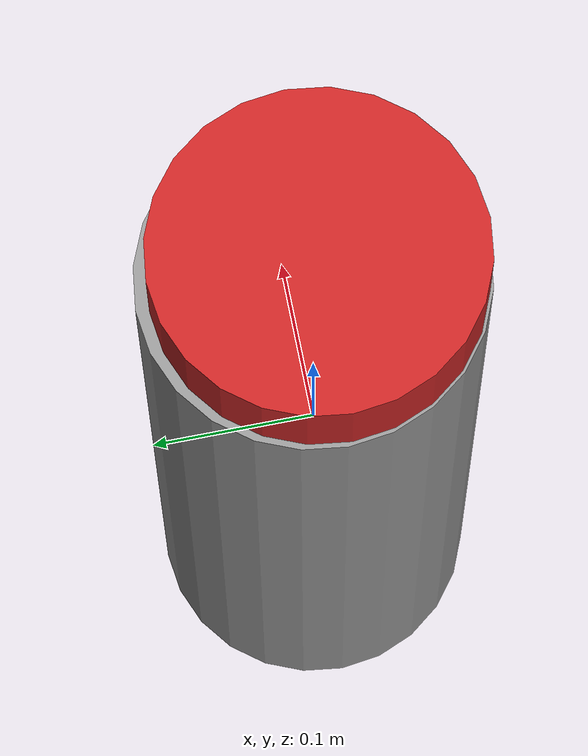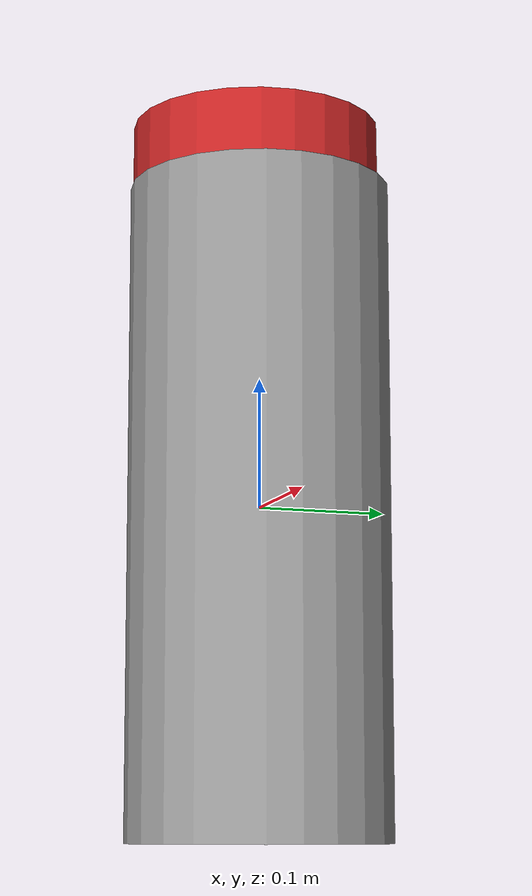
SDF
<?xml version='1.0'?>
<sdf version='1.7'>
  <model name='double_cylinder_actuator'>
    <link name='outer_cylinder'>
      <inertial>
        <mass>1</mass>
        <inertia>
          <ixx>0.145833</ixx>
          <ixy>0</ixy>
          <ixz>0</ixz>
          <iyy>0.145833</iyy>
          <iyz>0</iyz>
          <izz>0.125</izz>
        </inertia>
        <pose>0 0 0 0 -0 0</pose>
      </inertial>
      <pose>0 0 0 -5e-06 -6e-06 0</pose>
      <gravity>1</gravity>
      <self_collide>0</self_collide>
      <kinematic>0</kinematic>
      <enable_wind>0</enable_wind>
      <visual name='visual'>
        <pose>0 0 0 0 -0 0</pose>
        <geometry>
          <cylinder>
            <radius>0.1</radius>
            <length>0.5</length>
          </cylinder>
        </geometry>
        <material>
          <lighting>1</lighting>
          <script>
            <uri>file://media/materials/scripts/gazebo.material</uri>
            <name>Gazebo/Grey</name>
          </script>
          <shader type='pixel'>
            <normal_map>__default__</normal_map>
          </shader>
          <ambient>0.8 0.8 0.8 1</ambient>
          <diffuse>0.7 0.7 0.7 1</diffuse>
          <specular>0.01 0.01 0.01 1</specular>
          <emissive>0 0 0 1</emissive>
        </material>
        <transparency>0</transparency>
        <cast_shadows>1</cast_shadows>
      </visual>
      <collision name='collision'>
        <laser_retro>0</laser_retro>
        <max_contacts>10</max_contacts>
        <pose>0 0 0 0 -0 0</pose>
        <geometry>
          <cylinder>
            <radius>0.1</radius>
            <length>0.5</length>
          </cylinder>
        </geometry>
        <surface>
          <friction>
            <ode>
              <mu>1</mu>
              <mu2>1</mu2>
              <fdir1>0 0 0</fdir1>
              <slip1>0</slip1>
              <slip2>0</slip2>
            </ode>
            <torsional>
              <coefficient>1</coefficient>
              <patch_radius>0</patch_radius>
              <surface_radius>0</surface_radius>
              <use_patch_radius>1</use_patch_radius>
              <ode>
                <slip>0</slip>
              </ode>
            </torsional>
          </friction>
          <bounce>
            <restitution_coefficient>0</restitution_coefficient>
            <threshold>1e+06</threshold>
          </bounce>
          <contact>
            <collide_without_contact>0</collide_without_contact>
            <collide_without_contact_bitmask>1</collide_without_contact_bitmask>
            <collide_bitmask>1</collide_bitmask>
            <ode>
              <soft_cfm>0</soft_cfm>
              <soft_erp>0.2</soft_erp>
              <kp>1e+13</kp>
              <kd>1</kd>
              <max_vel>0.01</max_vel>
              <min_depth>0</min_depth>
            </ode>
            <bullet>
              <split_impulse>1</split_impulse>
              <split_impulse_penetration_threshold>-0.01</split_impulse_penetration_threshold>
              <soft_cfm>0</soft_cfm>
              <soft_erp>0.2</soft_erp>
              <kp>1e+13</kp>
              <kd>1</kd>
            </bullet>
          </contact>
        </surface>
      </collision>
    </link>
    <link name='inner_cylinder'>
      <inertial>
        <mass>1</mass>
        <inertia>
          <ixx>0.145833</ixx>
          <ixy>0</ixy>
          <ixz>0</ixz>
          <iyy>0.145833</iyy>
          <iyz>0</iyz>
          <izz>0.125</izz>
        </inertia>
        <pose>0 0 0 0 -0 0</pose>
      </inertial>
      <pose>-0.0025 -0.0025 0.025 -5e-06 -6e-06 0</pose>
      <gravity>1</gravity>
      <self_collide>0</self_collide>
      <kinematic>0</kinematic>
      <enable_wind>0</enable_wind>
      <visual name='visual'>
        <pose>0 0 0 0 -0 0</pose>
        <geometry>
          <cylinder>
            <radius>0.095</radius>
            <length>0.55</length>
          </cylinder>
        </geometry>
        <material>
          <lighting>1</lighting>
          <script>
            <uri>file://media/materials/scripts/gazebo.material</uri>
            <name>Gazebo/Red</name>
          </script>
          <shader type='pixel'>
            <normal_map>__default__</normal_map>
          </shader>
          <ambient>0.3 0.3 0.3 1</ambient>
          <diffuse>0.7 0.7 0.7 1</diffuse>
          <specular>0.01 0.01 0.01 1</specular>
          <emissive>0 0 0 1</emissive>
        </material>
        <transparency>0</transparency>
        <cast_shadows>1</cast_shadows>
      </visual>
      <collision name='collision'>
        <laser_retro>0</laser_retro>
        <max_contacts>10</max_contacts>
        <pose>0 0 0 0 -0 0</pose>
        <geometry>
          <cylinder>
            <radius>0.095</radius>
            <length>0.55</length>
          </cylinder>
        </geometry>
        <surface>
          <friction>
            <ode>
              <mu>1</mu>
              <mu2>1</mu2>
              <fdir1>0 0 0</fdir1>
              <slip1>0</slip1>
              <slip2>0</slip2>
            </ode>
            <torsional>
              <coefficient>1</coefficient>
              <patch_radius>0</patch_radius>
              <surface_radius>0</surface_radius>
              <use_patch_radius>1</use_patch_radius>
              <ode>
                <slip>0</slip>
              </ode>
            </torsional>
          </friction>
          <bounce>
            <restitution_coefficient>0</restitution_coefficient>
            <threshold>1e+06</threshold>
          </bounce>
          <contact>
            <collide_without_contact>0</collide_without_contact>
            <collide_without_contact_bitmask>1</collide_without_contact_bitmask>
            <collide_bitmask>1</collide_bitmask>
            <ode>
              <soft_cfm>0</soft_cfm>
              <soft_erp>0.2</soft_erp>
              <kp>1e+13</kp>
              <kd>1</kd>
              <max_vel>0.01</max_vel>
              <min_depth>0</min_depth>
            </ode>
            <bullet>
              <split_impulse>1</split_impulse>
              <split_impulse_penetration_threshold>-0.01</split_impulse_penetration_threshold>
              <soft_cfm>0</soft_cfm>
              <soft_erp>0.2</soft_erp>
              <kp>1e+13</kp>
              <kd>1</kd>
            </bullet>
          </contact>
        </surface>
      </collision>
    </link>
    <joint name='linear_actuator_joint' type='prismatic'>
      <parent>outer_cylinder</parent>
      <child>inner_cylinder</child>
      <pose>0 0 0 0 -0 0</pose>
      <axis>
        <xyz>0 0 1</xyz>
        <limit>
          <lower>-0</lower>
          <upper>0.5</upper>
          <effort>-1</effort>
          <velocity>-1</velocity>
        </limit>
        <dynamics>
          <spring_reference>0</spring_reference>
          <spring_stiffness>0</spring_stiffness>
          <damping>0</damping>
          <friction>0</friction>
        </dynamics>
      </axis>
      <physics>
        <ode>
          <limit>
            <cfm>0</cfm>
            <erp>0.2</erp>
          </limit>
          <suspension>
            <cfm>0</cfm>
            <erp>0.2</erp>
          </suspension>
        </ode>
      </physics>
    </joint>
    <static>0</static>
    <allow_auto_disable>1</allow_auto_disable>
  </model>
</sdf>
